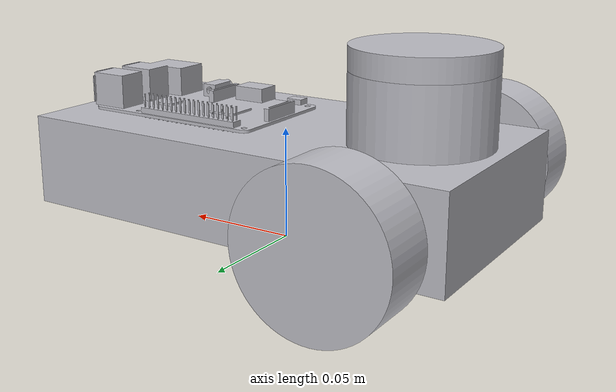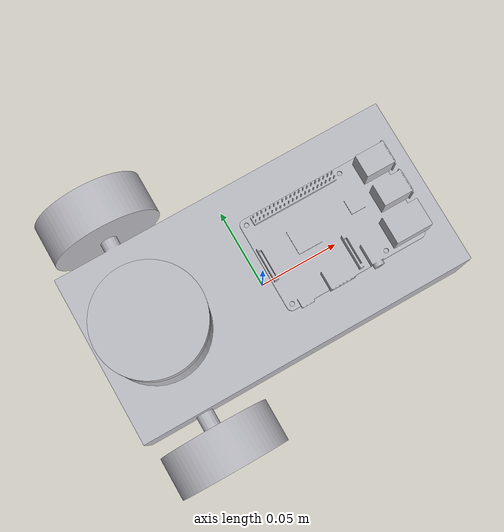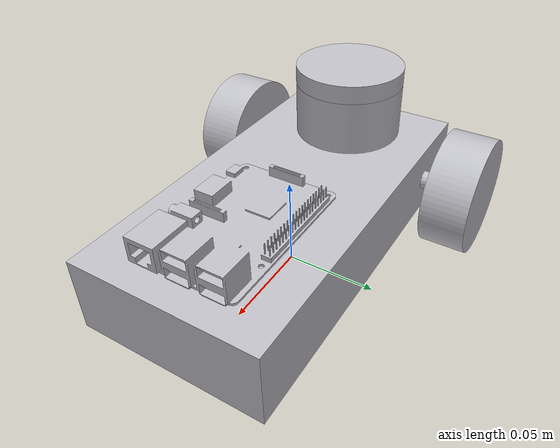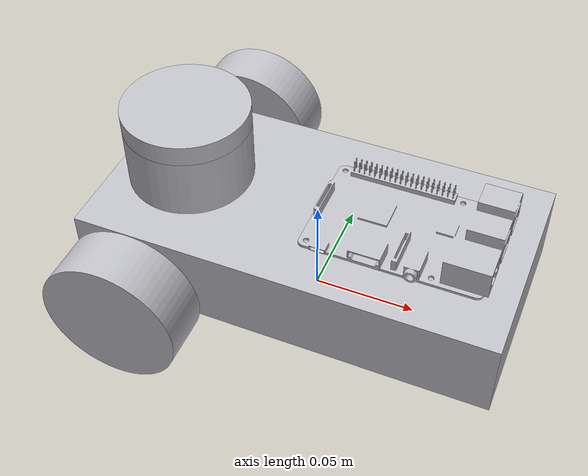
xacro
<?xml version="1.0" ?>
<robot name="new" xmlns:xacro="http://www.ros.org/wiki/xacro">

<xacro:include filename="$(find new_description)/urdf/materials.xacro" />
<xacro:include filename="$(find new_description)/urdf/new.trans" />
<xacro:include filename="$(find new_description)/urdf/new.gazebo" />

<link name="base_link">
  <inertial>
    <origin rpy="0 0 0" xyz="-0.0063353296030844485 2.0521233425865958e-17 0.0358493071188325"/>
    <mass value="0.9395774258521424"/>
    <inertia ixx="0.000951" ixy="0.0" ixz="0.000185" iyy="0.003416" iyz="0.0" izz="0.003928"/>
  </inertial>
  <visual>
    <origin rpy="0 0 0" xyz="0 0 0"/>
    <geometry>
      <mesh filename="package://new_description/meshes/base_link.stl" scale="0.001 0.001 0.001"/>
    </geometry>
    <material name="silver"/>
  </visual>
  <collision>
    <origin rpy="0 0 0" xyz="0 0 0"/>
    <geometry>
      <mesh filename="package://new_description/meshes/base_link.stl" scale="0.001 0.001 0.001"/>
    </geometry>
  </collision>
</link>

<link name="r_wheel_1">
  <inertial>
    <origin rpy="0 0 0" xyz="-1.3877787807814457e-17 -0.012499999999999997 -6.938893903907228e-18"/>
    <mass value="0.11821469543761906"/>
    <inertia ixx="3.7e-05" ixy="-0.0" ixz="0.0" iyy="6.2e-05" iyz="0.0" izz="3.7e-05"/>
  </inertial>
  <visual>
    <origin rpy="0 0 0" xyz="0.065 0.06 -0.0325"/>
    <geometry>
      <mesh filename="package://new_description/meshes/r_wheel_1.stl" scale="0.001 0.001 0.001"/>
    </geometry>
    <material name="silver"/>
  </visual>
  <collision>
    <origin rpy="0 0 0" xyz="0.065 0.06 -0.0325"/>
    <geometry>
      <mesh filename="package://new_description/meshes/r_wheel_1.stl" scale="0.001 0.001 0.001"/>
    </geometry>
  </collision>
</link>

<link name="l_wheel_1">
  <inertial>
    <origin rpy="0 0 0" xyz="-1.3877787807814457e-17 0.012499999999999997 -6.938893903907228e-18"/>
    <mass value="0.11821469543761906"/>
    <inertia ixx="3.7e-05" ixy="0.0" ixz="0.0" iyy="6.2e-05" iyz="-0.0" izz="3.7e-05"/>
  </inertial>
  <visual>
    <origin rpy="0 0 0" xyz="0.065 -0.06 -0.0325"/>
    <geometry>
      <mesh filename="package://new_description/meshes/l_wheel_1.stl" scale="0.001 0.001 0.001"/>
    </geometry>
    <material name="silver"/>
  </visual>
  <collision>
    <origin rpy="0 0 0" xyz="0.065 -0.06 -0.0325"/>
    <geometry>
      <mesh filename="package://new_description/meshes/l_wheel_1.stl" scale="0.001 0.001 0.001"/>
    </geometry>
  </collision>
</link>

<link name="lidar_1">
  <inertial>
    <origin rpy="0 0 0" xyz="-2.7755575615628914e-17 0.0 0.0049999999999999906"/>
    <mass value="0.03901858075758523"/>
    <inertia ixx="9e-06" ixy="0.0" ixz="0.0" iyy="9e-06" iyz="0.0" izz="1.8e-05"/>
  </inertial>
  <visual>
    <origin rpy="0 0 0" xyz="0.065 -0.0 -0.0825"/>
    <geometry>
      <mesh filename="package://new_description/meshes/lidar_1.stl" scale="0.001 0.001 0.001"/>
    </geometry>
    <material name="silver"/>
  </visual>
  <collision>
    <origin rpy="0 0 0" xyz="0.065 -0.0 -0.0825"/>
    <geometry>
      <mesh filename="package://new_description/meshes/lidar_1.stl" scale="0.001 0.001 0.001"/>
    </geometry>
  </collision>
</link>

<link name="caster_1">
  <inertial>
    <origin rpy="0 0 0" xyz="-0.02001699999999998 2.5577640408203277e-18 -0.004777502012872354"/>
    <mass value="0.03319986526526746"/>
    <inertia ixx="1e-06" ixy="0.0" ixz="-0.0" iyy="1e-06" iyz="-0.0" izz="2e-06"/>
  </inertial>
  <visual>
    <origin rpy="0 0 0" xyz="-0.1 -0.0 -0.0125"/>
    <geometry>
      <mesh filename="package://new_description/meshes/caster_1.stl" scale="0.001 0.001 0.001"/>
    </geometry>
    <material name="silver"/>
  </visual>
  <collision>
    <origin rpy="0 0 0" xyz="-0.1 -0.0 -0.0125"/>
    <geometry>
      <mesh filename="package://new_description/meshes/caster_1.stl" scale="0.001 0.001 0.001"/>
    </geometry>
  </collision>
</link>

<link name="pi_1">
  <inertial>
    <origin rpy="0 0 0" xyz="0.0579654725197327 -0.0007540083650862771 0.005888830680916848"/>
    <mass value="0.13472167579144456"/>
    <inertia ixx="4.1e-05" ixy="-0.0" ixz="-9e-06" iyy="8.3e-05" iyz="0.0" izz="0.000118"/>
  </inertial>
  <visual>
    <origin rpy="0 0 0" xyz="-0.0 -0.0 -0.0525"/>
    <geometry>
      <mesh filename="package://new_description/meshes/pi_1.stl" scale="0.001 0.001 0.001"/>
    </geometry>
    <material name="silver"/>
  </visual>
  <collision>
    <origin rpy="0 0 0" xyz="-0.0 -0.0 -0.0525"/>
    <geometry>
      <mesh filename="package://new_description/meshes/pi_1.stl" scale="0.001 0.001 0.001"/>
    </geometry>
  </collision>
</link>

<joint name="Rev1" type="continuous">
  <origin rpy="0 0 0" xyz="-0.065 -0.06 0.0325"/>
  <parent link="base_link"/>
  <child link="r_wheel_1"/>
  <axis xyz="0.0 1.0 0.0"/>
</joint>

<joint name="Rev2" type="continuous">
  <origin rpy="0 0 0" xyz="-0.065 0.06 0.0325"/>
  <parent link="base_link"/>
  <child link="l_wheel_1"/>
  <axis xyz="0.0 1.0 0.0"/>
</joint>

<joint name="Rigid3" type="fixed">
  <origin rpy="0 0 0" xyz="-0.065 0.0 0.0825"/>
  <parent link="base_link"/>
  <child link="lidar_1"/>
</joint>

<joint name="Rigid4" type="fixed">
  <origin rpy="0 0 0" xyz="0.1 0.0 0.0125"/>
  <parent link="base_link"/>
  <child link="caster_1"/>
</joint>

<joint name="Rigid5" type="fixed">
  <origin rpy="0 0 0" xyz="0.0 0.0 0.0525"/>
  <parent link="base_link"/>
  <child link="pi_1"/>
</joint>

</robot>

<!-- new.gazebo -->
<robot name="new" xmlns:xacro="http://www.ros.org/wiki/xacro" >

<xacro:property name="body_color" value="Gazebo/Silver" />

<gazebo>
  <plugin filename="libgazebo_ros_control.so" name="control"/>
</gazebo>
<gazebo reference="base_link">
  <material>${body_color}</material>
  <mu1>0.2</mu1>
  <mu2>0.2</mu2>
  <selfCollide>true</selfCollide>
  <gravity>true</gravity>
</gazebo>

<gazebo reference="r_wheel_1">
  <material>${body_color}</material>
  <mu1>15000</mu1>
  <mu2>15000</mu2>
  <selfCollide>true</selfCollide>
</gazebo>

<gazebo reference="l_wheel_1">
  <material>${body_color}</material>
  <mu1>15000</mu1>
  <mu2>15000</mu2>
  <selfCollide>true</selfCollide>
</gazebo>

<gazebo reference="lidar_1">
  <material>${body_color}</material>
  <mu1>0.2</mu1>
  <mu2>0.2</mu2>
  <selfCollide>true</selfCollide>
</gazebo>

<gazebo reference="caster_1">
  <material>${body_color}</material>
  <mu1>0.1</mu1>
  <mu2>0.1</mu2>
  <selfCollide>true</selfCollide>
</gazebo>

<gazebo reference="pi_1">
  <material>${body_color}</material>
  <mu1>0.2</mu1>
  <mu2>0.2</mu2>
  <selfCollide>true</selfCollide>
</gazebo>

<gazebo>
  <plugin name="differential_drive_controller" filename="libgazebo_ros_diff_drive.so">

    <!-- Plugin update rate in Hz -->
    <updateRate>10</updateRate>

    <!-- Name of left joint, defaults to `left_joint` -->
    <leftJoint>Rev2</leftJoint>

    <!-- Name of right joint, defaults to `right_joint` -->
    <rightJoint>Rev1</rightJoint>

    <!-- The distance from the center of one wheel to the other, in meters, defaults to 0.34 m -->
    <wheelSeparation>0.145</wheelSeparation>

    <!-- Diameter of the wheels, in meters, defaults to 0.15 m -->
    <wheelDiameter>0.065</wheelDiameter>

    <!-- Wheel acceleration, in rad/s^2, defaults to 0.0 rad/s^2 -->
    <wheelAcceleration>1.0</wheelAcceleration>

    <!-- Maximum torque which the wheels can produce, in Nm, defaults to 5 Nm -->
    <wheelTorque>20</wheelTorque>

    <!-- Topic to receive geometry_msgs/Twist message commands, defaults to `cmd_vel` -->
    <commandTopic>cmd_vel</commandTopic>

    <!-- Topic to publish nav_msgs/Odometry messages, defaults to `odom` -->
    <odometryTopic>odom</odometryTopic>

    <!-- Odometry frame, defaults to `odom` -->
    <odometryFrame>odom</odometryFrame>

    <!-- Robot frame to calculate odometry from, defaults to `base_footprint` -->
    <robotBaseFrame>base_link</robotBaseFrame>

    <!-- Odometry source, 0 for ENCODER, 1 for WORLD, defaults to WORLD -->
    <odometrySource>1</odometrySource>

    <!-- Set to true to publish transforms for the wheel links, defaults to false -->
    <publishWheelTF>true</publishWheelTF>

    <!-- Set to true to publish transforms for the odometry, defaults to true -->
    <publishOdom>true</publishOdom>

    <!-- Set to true to publish sensor_msgs/JointState on /joint_states for the wheel joints, defaults to false -->
    <publishWheelJointState>true</publishWheelJointState>

    <!-- Set to true to swap right and left wheels, defaults to true -->
    <legacyMode>false</legacyMode>
  </plugin>
</gazebo>

  <!-- hokuyo -->
  <gazebo reference="lidar_1">
     <sensor type="ray" name="lidar_sensor">
      <pose>0 0 0 0 0 0</pose>
      <visualize>false</visualize>
      <update_rate>20</update_rate>
      <ray>
        <scan>
          <horizontal>
            <samples>720</samples>
            <resolution>1</resolution>
            <min_angle>-3.14</min_angle>
            <max_angle>3.14</max_angle>
          </horizontal>
        </scan>
        <range>
          <min>0.05</min>
          <max>1.0</max>
          <resolution>0.01</resolution>
        </range>
        <noise>
          <type>gaussian</type>
          <mean>0.0</mean>
          <stddev>0.01</stddev>
        </noise>
      </ray>
      <plugin name="gazebo_ros_head_hokuyo_controller" filename="libgazebo_ros_laser.so">
        <topicName>/scan</topicName>
        <frameName>lidar_1</frameName>
      </plugin>
    </sensor>
  </gazebo>

</robot>
